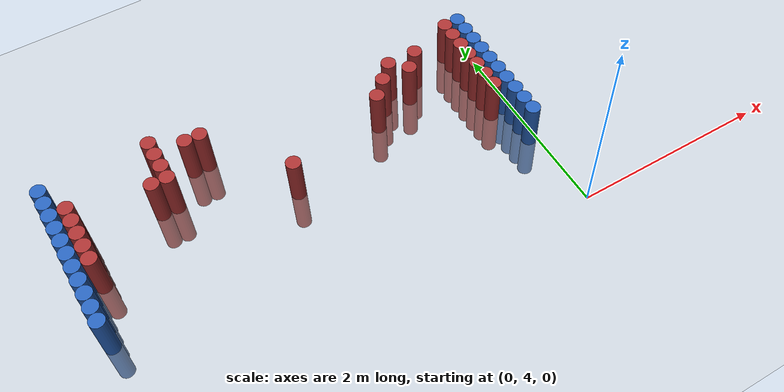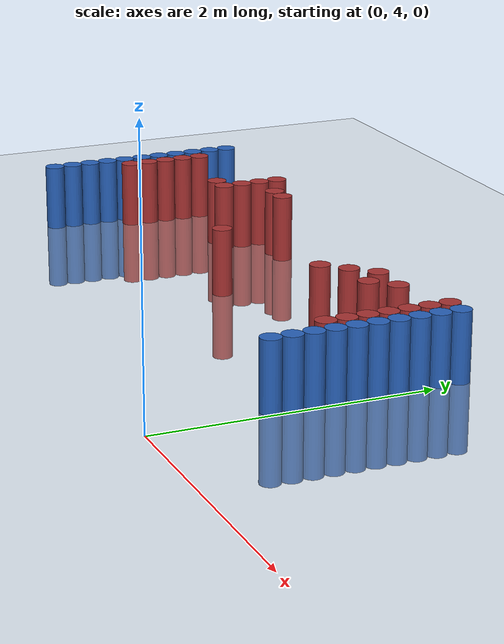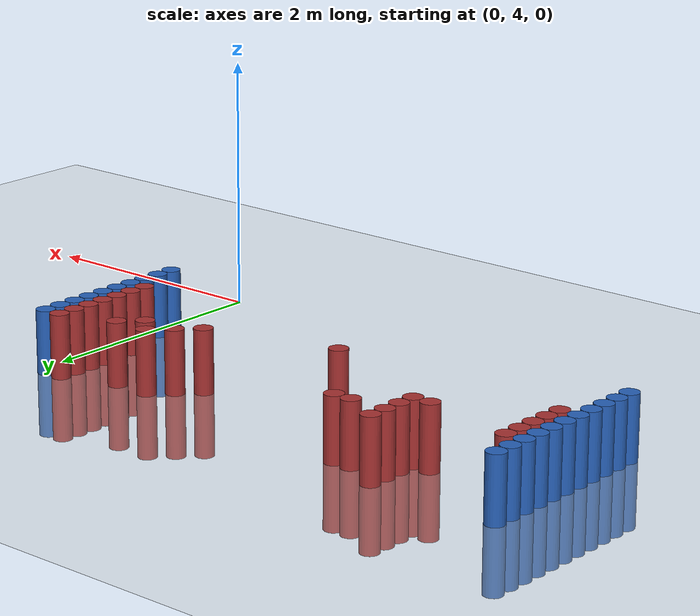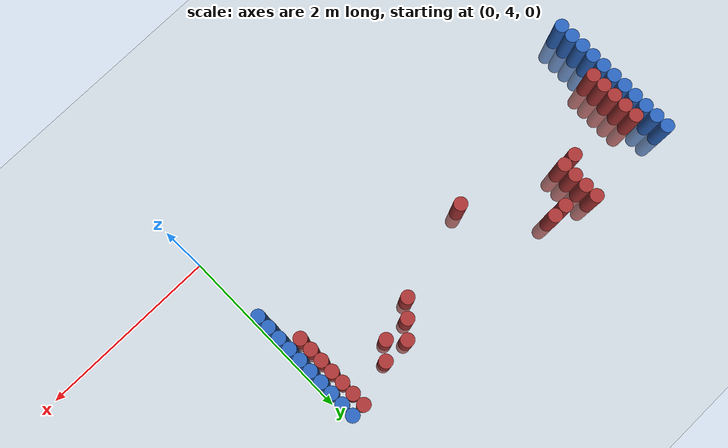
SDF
<sdf version="1.6">
 <world name="default">
  <model name="ground_plane">
   <static>1</static>
   <link name="link">
    <collision name="collision">
     <geometry><plane><normal>0 0 1</normal><size>100 100</size></plane></geometry>
     <surface><friction><ode><mu>100</mu><mu2>50</mu2></ode></friction></surface>
    </collision>
    <visual name="visual">
     <cast_shadows>0</cast_shadows>
     <geometry><plane><normal>0 0 1</normal><size>100 100</size></plane></geometry>
     <material>
      <script><uri>file://media/materials/scripts/gazebo.material</uri><name>Gazebo/Grey</name></script>
     </material>
    </visual>
   </link>
  </model>
  <model name="unit_cylinder_92">
   <static>1</static>
   <pose>-0.075000 4.875000 0.000000 0.000000 0.000000 0.000000</pose>
   <link name="link">
    <inertial>
     <mass>1</mass>
     <inertia><ixx>0.145833</ixx><ixy>0</ixy><ixz>0</ixz><iyy>0.145833</iyy><iyz>0</iyz><izz>0.125</izz></inertia>
    </inertial>
    <collision name="collision">
     <geometry><cylinder><radius>0.075000</radius><length>1</length></cylinder></geometry>
    </collision>
    <visual name="visual">
     <geometry><cylinder><radius>0.075000</radius><length>1</length></cylinder></geometry>
     <material>
      <ambient>0.152000 0.379000 0.720000 1</ambient>
      <diffuse>0.152000 0.379000 0.720000 1</diffuse>
     </material>
     <material>
      <script><name>Gazebo/Grey</name><uri>file://media/materials/scripts/gazebo.material</uri></script>
     </material>
    </visual>
   </link>
  </model>
  <model name="unit_cylinder_93">
   <static>1</static>
   <pose>-4.425000 4.875000 0.000000 0.000000 0.000000 0.000000</pose>
   <link name="link">
    <inertial>
     <mass>1</mass>
     <inertia><ixx>0.145833</ixx><ixy>0</ixy><ixz>0</ixz><iyy>0.145833</iyy><iyz>0</iyz><izz>0.125</izz></inertia>
    </inertial>
    <collision name="collision">
     <geometry><cylinder><radius>0.075000</radius><length>1</length></cylinder></geometry>
    </collision>
    <visual name="visual">
     <geometry><cylinder><radius>0.075000</radius><length>1</length></cylinder></geometry>
     <material>
      <ambient>0.152000 0.379000 0.720000 1</ambient>
      <diffuse>0.152000 0.379000 0.720000 1</diffuse>
     </material>
     <material>
      <script><name>Gazebo/Grey</name><uri>file://media/materials/scripts/gazebo.material</uri></script>
     </material>
    </visual>
   </link>
  </model>
  <model name="unit_cylinder_94">
   <static>1</static>
   <pose>-0.075000 5.025000 0.000000 0.000000 0.000000 0.000000</pose>
   <link name="link">
    <inertial>
     <mass>1</mass>
     <inertia><ixx>0.145833</ixx><ixy>0</ixy><ixz>0</ixz><iyy>0.145833</iyy><iyz>0</iyz><izz>0.125</izz></inertia>
    </inertial>
    <collision name="collision">
     <geometry><cylinder><radius>0.075000</radius><length>1</length></cylinder></geometry>
    </collision>
    <visual name="visual">
     <geometry><cylinder><radius>0.075000</radius><length>1</length></cylinder></geometry>
     <material>
      <ambient>0.152000 0.379000 0.720000 1</ambient>
      <diffuse>0.152000 0.379000 0.720000 1</diffuse>
     </material>
     <material>
      <script><name>Gazebo/Grey</name><uri>file://media/materials/scripts/gazebo.material</uri></script>
     </material>
    </visual>
   </link>
  </model>
  <model name="unit_cylinder_95">
   <static>1</static>
   <pose>-4.425000 5.025000 0.000000 0.000000 0.000000 0.000000</pose>
   <link name="link">
    <inertial>
     <mass>1</mass>
     <inertia><ixx>0.145833</ixx><ixy>0</ixy><ixz>0</ixz><iyy>0.145833</iyy><iyz>0</iyz><izz>0.125</izz></inertia>
    </inertial>
    <collision name="collision">
     <geometry><cylinder><radius>0.075000</radius><length>1</length></cylinder></geometry>
    </collision>
    <visual name="visual">
     <geometry><cylinder><radius>0.075000</radius><length>1</length></cylinder></geometry>
     <material>
      <ambient>0.152000 0.379000 0.720000 1</ambient>
      <diffuse>0.152000 0.379000 0.720000 1</diffuse>
     </material>
     <material>
      <script><name>Gazebo/Grey</name><uri>file://media/materials/scripts/gazebo.material</uri></script>
     </material>
    </visual>
   </link>
  </model>
  <model name="unit_cylinder_96">
   <static>1</static>
   <pose>-4.425000 5.175000 0.000000 0.000000 0.000000 0.000000</pose>
   <link name="link">
    <inertial>
     <mass>1</mass>
     <inertia><ixx>0.145833</ixx><ixy>0</ixy><ixz>0</ixz><iyy>0.145833</iyy><iyz>0</iyz><izz>0.125</izz></inertia>
    </inertial>
    <collision name="collision">
     <geometry><cylinder><radius>0.075000</radius><length>1</length></cylinder></geometry>
    </collision>
    <visual name="visual">
     <geometry><cylinder><radius>0.075000</radius><length>1</length></cylinder></geometry>
     <material>
      <ambient>0.152000 0.379000 0.720000 1</ambient>
      <diffuse>0.152000 0.379000 0.720000 1</diffuse>
     </material>
     <material>
      <script><name>Gazebo/Grey</name><uri>file://media/materials/scripts/gazebo.material</uri></script>
     </material>
    </visual>
   </link>
  </model>
  <model name="unit_cylinder_97">
   <static>1</static>
   <pose>-4.425000 5.325000 0.000000 0.000000 0.000000 0.000000</pose>
   <link name="link">
    <inertial>
     <mass>1</mass>
     <inertia><ixx>0.145833</ixx><ixy>0</ixy><ixz>0</ixz><iyy>0.145833</iyy><iyz>0</iyz><izz>0.125</izz></inertia>
    </inertial>
    <collision name="collision">
     <geometry><cylinder><radius>0.075000</radius><length>1</length></cylinder></geometry>
    </collision>
    <visual name="visual">
     <geometry><cylinder><radius>0.075000</radius><length>1</length></cylinder></geometry>
     <material>
      <ambient>0.152000 0.379000 0.720000 1</ambient>
      <diffuse>0.152000 0.379000 0.720000 1</diffuse>
     </material>
     <material>
      <script><name>Gazebo/Grey</name><uri>file://media/materials/scripts/gazebo.material</uri></script>
     </material>
    </visual>
   </link>
  </model>
  <model name="unit_cylinder_98">
   <static>1</static>
   <pose>-4.425000 5.475000 0.000000 0.000000 0.000000 0.000000</pose>
   <link name="link">
    <inertial>
     <mass>1</mass>
     <inertia><ixx>0.145833</ixx><ixy>0</ixy><ixz>0</ixz><iyy>0.145833</iyy><iyz>0</iyz><izz>0.125</izz></inertia>
    </inertial>
    <collision name="collision">
     <geometry><cylinder><radius>0.075000</radius><length>1</length></cylinder></geometry>
    </collision>
    <visual name="visual">
     <geometry><cylinder><radius>0.075000</radius><length>1</length></cylinder></geometry>
     <material>
      <ambient>0.152000 0.379000 0.720000 1</ambient>
      <diffuse>0.152000 0.379000 0.720000 1</diffuse>
     </material>
     <material>
      <script><name>Gazebo/Grey</name><uri>file://media/materials/scripts/gazebo.material</uri></script>
     </material>
    </visual>
   </link>
  </model>
  <model name="unit_cylinder_99">
   <static>1</static>
   <pose>-4.425000 5.625000 0.000000 0.000000 0.000000 0.000000</pose>
   <link name="link">
    <inertial>
     <mass>1</mass>
     <inertia><ixx>0.145833</ixx><ixy>0</ixy><ixz>0</ixz><iyy>0.145833</iyy><iyz>0</iyz><izz>0.125</izz></inertia>
    </inertial>
    <collision name="collision">
     <geometry><cylinder><radius>0.075000</radius><length>1</length></cylinder></geometry>
    </collision>
    <visual name="visual">
     <geometry><cylinder><radius>0.075000</radius><length>1</length></cylinder></geometry>
     <material>
      <ambient>0.152000 0.379000 0.720000 1</ambient>
      <diffuse>0.152000 0.379000 0.720000 1</diffuse>
     </material>
     <material>
      <script><name>Gazebo/Grey</name><uri>file://media/materials/scripts/gazebo.material</uri></script>
     </material>
    </visual>
   </link>
  </model>
  <model name="unit_cylinder_100">
   <static>1</static>
   <pose>-4.425000 5.775000 0.000000 0.000000 0.000000 0.000000</pose>
   <link name="link">
    <inertial>
     <mass>1</mass>
     <inertia><ixx>0.145833</ixx><ixy>0</ixy><ixz>0</ixz><iyy>0.145833</iyy><iyz>0</iyz><izz>0.125</izz></inertia>
    </inertial>
    <collision name="collision">
     <geometry><cylinder><radius>0.075000</radius><length>1</length></cylinder></geometry>
    </collision>
    <visual name="visual">
     <geometry><cylinder><radius>0.075000</radius><length>1</length></cylinder></geometry>
     <material>
      <ambient>0.152000 0.379000 0.720000 1</ambient>
      <diffuse>0.152000 0.379000 0.720000 1</diffuse>
     </material>
     <material>
      <script><name>Gazebo/Grey</name><uri>file://media/materials/scripts/gazebo.material</uri></script>
     </material>
    </visual>
   </link>
  </model>
  <model name="unit_cylinder_101">
   <static>1</static>
   <pose>-4.425000 5.925000 0.000000 0.000000 0.000000 0.000000</pose>
   <link name="link">
    <inertial>
     <mass>1</mass>
     <inertia><ixx>0.145833</ixx><ixy>0</ixy><ixz>0</ixz><iyy>0.145833</iyy><iyz>0</iyz><izz>0.125</izz></inertia>
    </inertial>
    <collision name="collision">
     <geometry><cylinder><radius>0.075000</radius><length>1</length></cylinder></geometry>
    </collision>
    <visual name="visual">
     <geometry><cylinder><radius>0.075000</radius><length>1</length></cylinder></geometry>
     <material>
      <ambient>0.152000 0.379000 0.720000 1</ambient>
      <diffuse>0.152000 0.379000 0.720000 1</diffuse>
     </material>
     <material>
      <script><name>Gazebo/Grey</name><uri>file://media/materials/scripts/gazebo.material</uri></script>
     </material>
    </visual>
   </link>
  </model>
  <model name="unit_cylinder_102">
   <static>1</static>
   <pose>-4.425000 6.075000 0.000000 0.000000 0.000000 0.000000</pose>
   <link name="link">
    <inertial>
     <mass>1</mass>
     <inertia><ixx>0.145833</ixx><ixy>0</ixy><ixz>0</ixz><iyy>0.145833</iyy><iyz>0</iyz><izz>0.125</izz></inertia>
    </inertial>
    <collision name="collision">
     <geometry><cylinder><radius>0.075000</radius><length>1</length></cylinder></geometry>
    </collision>
    <visual name="visual">
     <geometry><cylinder><radius>0.075000</radius><length>1</length></cylinder></geometry>
     <material>
      <ambient>0.152000 0.379000 0.720000 1</ambient>
      <diffuse>0.152000 0.379000 0.720000 1</diffuse>
     </material>
     <material>
      <script><name>Gazebo/Grey</name><uri>file://media/materials/scripts/gazebo.material</uri></script>
     </material>
    </visual>
   </link>
  </model>
  <model name="unit_cylinder_103">
   <static>1</static>
   <pose>-4.425000 6.225000 0.000000 0.000000 0.000000 0.000000</pose>
   <link name="link">
    <inertial>
     <mass>1</mass>
     <inertia><ixx>0.145833</ixx><ixy>0</ixy><ixz>0</ixz><iyy>0.145833</iyy><iyz>0</iyz><izz>0.125</izz></inertia>
    </inertial>
    <collision name="collision">
     <geometry><cylinder><radius>0.075000</radius><length>1</length></cylinder></geometry>
    </collision>
    <visual name="visual">
     <geometry><cylinder><radius>0.075000</radius><length>1</length></cylinder></geometry>
     <material>
      <ambient>0.152000 0.379000 0.720000 1</ambient>
      <diffuse>0.152000 0.379000 0.720000 1</diffuse>
     </material>
     <material>
      <script><name>Gazebo/Grey</name><uri>file://media/materials/scripts/gazebo.material</uri></script>
     </material>
    </visual>
   </link>
  </model>
  <model name="unit_cylinder_104">
   <static>1</static>
   <pose>-4.425000 6.375000 0.000000 0.000000 0.000000 0.000000</pose>
   <link name="link">
    <inertial>
     <mass>1</mass>
     <inertia><ixx>0.145833</ixx><ixy>0</ixy><ixz>0</ixz><iyy>0.145833</iyy><iyz>0</iyz><izz>0.125</izz></inertia>
    </inertial>
    <collision name="collision">
     <geometry><cylinder><radius>0.075000</radius><length>1</length></cylinder></geometry>
    </collision>
    <visual name="visual">
     <geometry><cylinder><radius>0.075000</radius><length>1</length></cylinder></geometry>
     <material>
      <ambient>0.152000 0.379000 0.720000 1</ambient>
      <diffuse>0.152000 0.379000 0.720000 1</diffuse>
     </material>
     <material>
      <script><name>Gazebo/Grey</name><uri>file://media/materials/scripts/gazebo.material</uri></script>
     </material>
    </visual>
   </link>
  </model>
  <model name="unit_cylinder_126">
   <static>1</static>
   <pose>-4.275000 5.475000 0.000000 0.000000 0.000000 0.000000</pose>
   <link name="link">
    <inertial>
     <mass>1</mass>
     <inertia><ixx>0.145833</ixx><ixy>0</ixy><ixz>0</ixz><iyy>0.145833</iyy><iyz>0</iyz><izz>0.125</izz></inertia>
    </inertial>
    <collision name="collision">
     <geometry><cylinder><radius>0.075000</radius><length>1</length></cylinder></geometry>
    </collision>
    <visual name="visual">
     <geometry><cylinder><radius>0.075000</radius><length>1</length></cylinder></geometry>
     <material>
      <ambient>0.648000 0.192000 0.192000 1</ambient>
      <diffuse>0.648000 0.192000 0.192000 1</diffuse>
     </material>
     <material>
      <script><name>Gazebo/Grey</name><uri>file://media/materials/scripts/gazebo.material</uri></script>
     </material>
    </visual>
   </link>
  </model>
  <model name="unit_cylinder_127">
   <static>1</static>
   <pose>-4.275000 5.625000 0.000000 0.000000 0.000000 0.000000</pose>
   <link name="link">
    <inertial>
     <mass>1</mass>
     <inertia><ixx>0.145833</ixx><ixy>0</ixy><ixz>0</ixz><iyy>0.145833</iyy><iyz>0</iyz><izz>0.125</izz></inertia>
    </inertial>
    <collision name="collision">
     <geometry><cylinder><radius>0.075000</radius><length>1</length></cylinder></geometry>
    </collision>
    <visual name="visual">
     <geometry><cylinder><radius>0.075000</radius><length>1</length></cylinder></geometry>
     <material>
      <ambient>0.648000 0.192000 0.192000 1</ambient>
      <diffuse>0.648000 0.192000 0.192000 1</diffuse>
     </material>
     <material>
      <script><name>Gazebo/Grey</name><uri>file://media/materials/scripts/gazebo.material</uri></script>
     </material>
    </visual>
   </link>
  </model>
  <model name="unit_cylinder_128">
   <static>1</static>
   <pose>-4.275000 5.775000 0.000000 0.000000 0.000000 0.000000</pose>
   <link name="link">
    <inertial>
     <mass>1</mass>
     <inertia><ixx>0.145833</ixx><ixy>0</ixy><ixz>0</ixz><iyy>0.145833</iyy><iyz>0</iyz><izz>0.125</izz></inertia>
    </inertial>
    <collision name="collision">
     <geometry><cylinder><radius>0.075000</radius><length>1</length></cylinder></geometry>
    </collision>
    <visual name="visual">
     <geometry><cylinder><radius>0.075000</radius><length>1</length></cylinder></geometry>
     <material>
      <ambient>0.648000 0.192000 0.192000 1</ambient>
      <diffuse>0.648000 0.192000 0.192000 1</diffuse>
     </material>
     <material>
      <script><name>Gazebo/Grey</name><uri>file://media/materials/scripts/gazebo.material</uri></script>
     </material>
    </visual>
   </link>
  </model>
  <model name="unit_cylinder_129">
   <static>1</static>
   <pose>-4.275000 5.925000 0.000000 0.000000 0.000000 0.000000</pose>
   <link name="link">
    <inertial>
     <mass>1</mass>
     <inertia><ixx>0.145833</ixx><ixy>0</ixy><ixz>0</ixz><iyy>0.145833</iyy><iyz>0</iyz><izz>0.125</izz></inertia>
    </inertial>
    <collision name="collision">
     <geometry><cylinder><radius>0.075000</radius><length>1</length></cylinder></geometry>
    </collision>
    <visual name="visual">
     <geometry><cylinder><radius>0.075000</radius><length>1</length></cylinder></geometry>
     <material>
      <ambient>0.648000 0.192000 0.192000 1</ambient>
      <diffuse>0.648000 0.192000 0.192000 1</diffuse>
     </material>
     <material>
      <script><name>Gazebo/Grey</name><uri>file://media/materials/scripts/gazebo.material</uri></script>
     </material>
    </visual>
   </link>
  </model>
  <model name="unit_cylinder_130">
   <static>1</static>
   <pose>-4.275000 6.075000 0.000000 0.000000 0.000000 0.000000</pose>
   <link name="link">
    <inertial>
     <mass>1</mass>
     <inertia><ixx>0.145833</ixx><ixy>0</ixy><ixz>0</ixz><iyy>0.145833</iyy><iyz>0</iyz><izz>0.125</izz></inertia>
    </inertial>
    <collision name="collision">
     <geometry><cylinder><radius>0.075000</radius><length>1</length></cylinder></geometry>
    </collision>
    <visual name="visual">
     <geometry><cylinder><radius>0.075000</radius><length>1</length></cylinder></geometry>
     <material>
      <ambient>0.648000 0.192000 0.192000 1</ambient>
      <diffuse>0.648000 0.192000 0.192000 1</diffuse>
     </material>
     <material>
      <script><name>Gazebo/Grey</name><uri>file://media/materials/scripts/gazebo.material</uri></script>
     </material>
    </visual>
   </link>
  </model>
  <model name="unit_cylinder_141">
   <static>1</static>
   <pose>-3.525000 5.925000 0.000000 0.000000 0.000000 0.000000</pose>
   <link name="link">
    <inertial>
     <mass>1</mass>
     <inertia><ixx>0.145833</ixx><ixy>0</ixy><ixz>0</ixz><iyy>0.145833</iyy><iyz>0</iyz><izz>0.125</izz></inertia>
    </inertial>
    <collision name="collision">
     <geometry><cylinder><radius>0.075000</radius><length>1</length></cylinder></geometry>
    </collision>
    <visual name="visual">
     <geometry><cylinder><radius>0.075000</radius><length>1</length></cylinder></geometry>
     <material>
      <ambient>0.648000 0.192000 0.192000 1</ambient>
      <diffuse>0.648000 0.192000 0.192000 1</diffuse>
     </material>
     <material>
      <script><name>Gazebo/Grey</name><uri>file://media/materials/scripts/gazebo.material</uri></script>
     </material>
    </visual>
   </link>
  </model>
  <model name="unit_cylinder_144">
   <static>1</static>
   <pose>-3.375000 5.925000 0.000000 0.000000 0.000000 0.000000</pose>
   <link name="link">
    <inertial>
     <mass>1</mass>
     <inertia><ixx>0.145833</ixx><ixy>0</ixy><ixz>0</ixz><iyy>0.145833</iyy><iyz>0</iyz><izz>0.125</izz></inertia>
    </inertial>
    <collision name="collision">
     <geometry><cylinder><radius>0.075000</radius><length>1</length></cylinder></geometry>
    </collision>
    <visual name="visual">
     <geometry><cylinder><radius>0.075000</radius><length>1</length></cylinder></geometry>
     <material>
      <ambient>0.648000 0.192000 0.192000 1</ambient>
      <diffuse>0.648000 0.192000 0.192000 1</diffuse>
     </material>
     <material>
      <script><name>Gazebo/Grey</name><uri>file://media/materials/scripts/gazebo.material</uri></script>
     </material>
    </visual>
   </link>
  </model>
  <model name="unit_cylinder_145">
   <static>1</static>
   <pose>-3.375000 6.075000 0.000000 0.000000 0.000000 0.000000</pose>
   <link name="link">
    <inertial>
     <mass>1</mass>
     <inertia><ixx>0.145833</ixx><ixy>0</ixy><ixz>0</ixz><iyy>0.145833</iyy><iyz>0</iyz><izz>0.125</izz></inertia>
    </inertial>
    <collision name="collision">
     <geometry><cylinder><radius>0.075000</radius><length>1</length></cylinder></geometry>
    </collision>
    <visual name="visual">
     <geometry><cylinder><radius>0.075000</radius><length>1</length></cylinder></geometry>
     <material>
      <ambient>0.648000 0.192000 0.192000 1</ambient>
      <diffuse>0.648000 0.192000 0.192000 1</diffuse>
     </material>
     <material>
      <script><name>Gazebo/Grey</name><uri>file://media/materials/scripts/gazebo.material</uri></script>
     </material>
    </visual>
   </link>
  </model>
  <model name="unit_cylinder_146">
   <static>1</static>
   <pose>-3.375000 6.225000 0.000000 0.000000 0.000000 0.000000</pose>
   <link name="link">
    <inertial>
     <mass>1</mass>
     <inertia><ixx>0.145833</ixx><ixy>0</ixy><ixz>0</ixz><iyy>0.145833</iyy><iyz>0</iyz><izz>0.125</izz></inertia>
    </inertial>
    <collision name="collision">
     <geometry><cylinder><radius>0.075000</radius><length>1</length></cylinder></geometry>
    </collision>
    <visual name="visual">
     <geometry><cylinder><radius>0.075000</radius><length>1</length></cylinder></geometry>
     <material>
      <ambient>0.648000 0.192000 0.192000 1</ambient>
      <diffuse>0.648000 0.192000 0.192000 1</diffuse>
     </material>
     <material>
      <script><name>Gazebo/Grey</name><uri>file://media/materials/scripts/gazebo.material</uri></script>
     </material>
    </visual>
   </link>
  </model>
  <model name="unit_cylinder_147">
   <static>1</static>
   <pose>-3.375000 6.375000 0.000000 0.000000 0.000000 0.000000</pose>
   <link name="link">
    <inertial>
     <mass>1</mass>
     <inertia><ixx>0.145833</ixx><ixy>0</ixy><ixz>0</ixz><iyy>0.145833</iyy><iyz>0</iyz><izz>0.125</izz></inertia>
    </inertial>
    <collision name="collision">
     <geometry><cylinder><radius>0.075000</radius><length>1</length></cylinder></geometry>
    </collision>
    <visual name="visual">
     <geometry><cylinder><radius>0.075000</radius><length>1</length></cylinder></geometry>
     <material>
      <ambient>0.648000 0.192000 0.192000 1</ambient>
      <diffuse>0.648000 0.192000 0.192000 1</diffuse>
     </material>
     <material>
      <script><name>Gazebo/Grey</name><uri>file://media/materials/scripts/gazebo.material</uri></script>
     </material>
    </visual>
   </link>
  </model>
  <model name="unit_cylinder_152">
   <static>1</static>
   <pose>-3.075000 6.225000 0.000000 0.000000 0.000000 0.000000</pose>
   <link name="link">
    <inertial>
     <mass>1</mass>
     <inertia><ixx>0.145833</ixx><ixy>0</ixy><ixz>0</ixz><iyy>0.145833</iyy><iyz>0</iyz><izz>0.125</izz></inertia>
    </inertial>
    <collision name="collision">
     <geometry><cylinder><radius>0.075000</radius><length>1</length></cylinder></geometry>
    </collision>
    <visual name="visual">
     <geometry><cylinder><radius>0.075000</radius><length>1</length></cylinder></geometry>
     <material>
      <ambient>0.648000 0.192000 0.192000 1</ambient>
      <diffuse>0.648000 0.192000 0.192000 1</diffuse>
     </material>
     <material>
      <script><name>Gazebo/Grey</name><uri>file://media/materials/scripts/gazebo.material</uri></script>
     </material>
    </visual>
   </link>
  </model>
  <model name="unit_cylinder_153">
   <static>1</static>
   <pose>-2.925000 6.225000 0.000000 0.000000 0.000000 0.000000</pose>
   <link name="link">
    <inertial>
     <mass>1</mass>
     <inertia><ixx>0.145833</ixx><ixy>0</ixy><ixz>0</ixz><iyy>0.145833</iyy><iyz>0</iyz><izz>0.125</izz></inertia>
    </inertial>
    <collision name="collision">
     <geometry><cylinder><radius>0.075000</radius><length>1</length></cylinder></geometry>
    </collision>
    <visual name="visual">
     <geometry><cylinder><radius>0.075000</radius><length>1</length></cylinder></geometry>
     <material>
      <ambient>0.648000 0.192000 0.192000 1</ambient>
      <diffuse>0.648000 0.192000 0.192000 1</diffuse>
     </material>
     <material>
      <script><name>Gazebo/Grey</name><uri>file://media/materials/scripts/gazebo.material</uri></script>
     </material>
    </visual>
   </link>
  </model>
  <model name="unit_cylinder_157">
   <static>1</static>
   <pose>-2.325000 5.475000 0.000000 0.000000 0.000000 0.000000</pose>
   <link name="link">
    <inertial>
     <mass>1</mass>
     <inertia><ixx>0.145833</ixx><ixy>0</ixy><ixz>0</ixz><iyy>0.145833</iyy><iyz>0</iyz><izz>0.125</izz></inertia>
    </inertial>
    <collision name="collision">
     <geometry><cylinder><radius>0.075000</radius><length>1</length></cylinder></geometry>
    </collision>
    <visual name="visual">
     <geometry><cylinder><radius>0.075000</radius><length>1</length></cylinder></geometry>
     <material>
      <ambient>0.648000 0.192000 0.192000 1</ambient>
      <diffuse>0.648000 0.192000 0.192000 1</diffuse>
     </material>
     <material>
      <script><name>Gazebo/Grey</name><uri>file://media/materials/scripts/gazebo.material</uri></script>
     </material>
    </visual>
   </link>
  </model>
  <model name="unit_cylinder_177">
   <static>1</static>
   <pose>-1.275000 5.775000 0.000000 0.000000 0.000000 0.000000</pose>
   <link name="link">
    <inertial>
     <mass>1</mass>
     <inertia><ixx>0.145833</ixx><ixy>0</ixy><ixz>0</ixz><iyy>0.145833</iyy><iyz>0</iyz><izz>0.125</izz></inertia>
    </inertial>
    <collision name="collision">
     <geometry><cylinder><radius>0.075000</radius><length>1</length></cylinder></geometry>
    </collision>
    <visual name="visual">
     <geometry><cylinder><radius>0.075000</radius><length>1</length></cylinder></geometry>
     <material>
      <ambient>0.648000 0.192000 0.192000 1</ambient>
      <diffuse>0.648000 0.192000 0.192000 1</diffuse>
     </material>
     <material>
      <script><name>Gazebo/Grey</name><uri>file://media/materials/scripts/gazebo.material</uri></script>
     </material>
    </visual>
   </link>
  </model>
  <model name="unit_cylinder_179">
   <static>1</static>
   <pose>-1.125000 5.925000 0.000000 0.000000 0.000000 0.000000</pose>
   <link name="link">
    <inertial>
     <mass>1</mass>
     <inertia><ixx>0.145833</ixx><ixy>0</ixy><ixz>0</ixz><iyy>0.145833</iyy><iyz>0</iyz><izz>0.125</izz></inertia>
    </inertial>
    <collision name="collision">
     <geometry><cylinder><radius>0.075000</radius><length>1</length></cylinder></geometry>
    </collision>
    <visual name="visual">
     <geometry><cylinder><radius>0.075000</radius><length>1</length></cylinder></geometry>
     <material>
      <ambient>0.648000 0.192000 0.192000 1</ambient>
      <diffuse>0.648000 0.192000 0.192000 1</diffuse>
     </material>
     <material>
      <script><name>Gazebo/Grey</name><uri>file://media/materials/scripts/gazebo.material</uri></script>
     </material>
    </visual>
   </link>
  </model>
  <model name="unit_cylinder_183">
   <static>1</static>
   <pose>-0.975000 6.075000 0.000000 0.000000 0.000000 0.000000</pose>
   <link name="link">
    <inertial>
     <mass>1</mass>
     <inertia><ixx>0.145833</ixx><ixy>0</ixy><ixz>0</ixz><iyy>0.145833</iyy><iyz>0</iyz><izz>0.125</izz></inertia>
    </inertial>
    <collision name="collision">
     <geometry><cylinder><radius>0.075000</radius><length>1</length></cylinder></geometry>
    </collision>
    <visual name="visual">
     <geometry><cylinder><radius>0.075000</radius><length>1</length></cylinder></geometry>
     <material>
      <ambient>0.648000 0.192000 0.192000 1</ambient>
      <diffuse>0.648000 0.192000 0.192000 1</diffuse>
     </material>
     <material>
      <script><name>Gazebo/Grey</name><uri>file://media/materials/scripts/gazebo.material</uri></script>
     </material>
    </visual>
   </link>
  </model>
  <model name="unit_cylinder_187">
   <static>1</static>
   <pose>-0.825000 5.925000 0.000000 0.000000 0.000000 0.000000</pose>
   <link name="link">
    <inertial>
     <mass>1</mass>
     <inertia><ixx>0.145833</ixx><ixy>0</ixy><ixz>0</ixz><iyy>0.145833</iyy><iyz>0</iyz><izz>0.125</izz></inertia>
    </inertial>
    <collision name="collision">
     <geometry><cylinder><radius>0.075000</radius><length>1</length></cylinder></geometry>
    </collision>
    <visual name="visual">
     <geometry><cylinder><radius>0.075000</radius><length>1</length></cylinder></geometry>
     <material>
      <ambient>0.648000 0.192000 0.192000 1</ambient>
      <diffuse>0.648000 0.192000 0.192000 1</diffuse>
     </material>
     <material>
      <script><name>Gazebo/Grey</name><uri>file://media/materials/scripts/gazebo.material</uri></script>
     </material>
    </visual>
   </link>
  </model>
  <model name="unit_cylinder_190">
   <static>1</static>
   <pose>-0.675000 6.075000 0.000000 0.000000 0.000000 0.000000</pose>
   <link name="link">
    <inertial>
     <mass>1</mass>
     <inertia><ixx>0.145833</ixx><ixy>0</ixy><ixz>0</ixz><iyy>0.145833</iyy><iyz>0</iyz><izz>0.125</izz></inertia>
    </inertial>
    <collision name="collision">
     <geometry><cylinder><radius>0.075000</radius><length>1</length></cylinder></geometry>
    </collision>
    <visual name="visual">
     <geometry><cylinder><radius>0.075000</radius><length>1</length></cylinder></geometry>
     <material>
      <ambient>0.648000 0.192000 0.192000 1</ambient>
      <diffuse>0.648000 0.192000 0.192000 1</diffuse>
     </material>
     <material>
      <script><name>Gazebo/Grey</name><uri>file://media/materials/scripts/gazebo.material</uri></script>
     </material>
    </visual>
   </link>
  </model>
  <model name="unit_cylinder_191">
   <static>1</static>
   <pose>-0.225000 5.325000 0.000000 0.000000 0.000000 0.000000</pose>
   <link name="link">
    <inertial>
     <mass>1</mass>
     <inertia><ixx>0.145833</ixx><ixy>0</ixy><ixz>0</ixz><iyy>0.145833</iyy><iyz>0</iyz><izz>0.125</izz></inertia>
    </inertial>
    <collision name="collision">
     <geometry><cylinder><radius>0.075000</radius><length>1</length></cylinder></geometry>
    </collision>
    <visual name="visual">
     <geometry><cylinder><radius>0.075000</radius><length>1</length></cylinder></geometry>
     <material>
      <ambient>0.648000 0.192000 0.192000 1</ambient>
      <diffuse>0.648000 0.192000 0.192000 1</diffuse>
     </material>
     <material>
      <script><name>Gazebo/Grey</name><uri>file://media/materials/scripts/gazebo.material</uri></script>
     </material>
    </visual>
   </link>
  </model>
  <model name="unit_cylinder_192">
   <static>1</static>
   <pose>-0.225000 5.475000 0.000000 0.000000 0.000000 0.000000</pose>
   <link name="link">
    <inertial>
     <mass>1</mass>
     <inertia><ixx>0.145833</ixx><ixy>0</ixy><ixz>0</ixz><iyy>0.145833</iyy><iyz>0</iyz><izz>0.125</izz></inertia>
    </inertial>
    <collision name="collision">
     <geometry><cylinder><radius>0.075000</radius><length>1</length></cylinder></geometry>
    </collision>
    <visual name="visual">
     <geometry><cylinder><radius>0.075000</radius><length>1</length></cylinder></geometry>
     <material>
      <ambient>0.648000 0.192000 0.192000 1</ambient>
      <diffuse>0.648000 0.192000 0.192000 1</diffuse>
     </material>
     <material>
      <script><name>Gazebo/Grey</name><uri>file://media/materials/scripts/gazebo.material</uri></script>
     </material>
    </visual>
   </link>
  </model>
  <model name="unit_cylinder_193">
   <static>1</static>
   <pose>-0.225000 5.625000 0.000000 0.000000 0.000000 0.000000</pose>
   <link name="link">
    <inertial>
     <mass>1</mass>
     <inertia><ixx>0.145833</ixx><ixy>0</ixy><ixz>0</ixz><iyy>0.145833</iyy><iyz>0</iyz><izz>0.125</izz></inertia>
    </inertial>
    <collision name="collision">
     <geometry><cylinder><radius>0.075000</radius><length>1</length></cylinder></geometry>
    </collision>
    <visual name="visual">
     <geometry><cylinder><radius>0.075000</radius><length>1</length></cylinder></geometry>
     <material>
      <ambient>0.648000 0.192000 0.192000 1</ambient>
      <diffuse>0.648000 0.192000 0.192000 1</diffuse>
     </material>
     <material>
      <script><name>Gazebo/Grey</name><uri>file://media/materials/scripts/gazebo.material</uri></script>
     </material>
    </visual>
   </link>
  </model>
  <model name="unit_cylinder_194">
   <static>1</static>
   <pose>-0.225000 5.775000 0.000000 0.000000 0.000000 0.000000</pose>
   <link name="link">
    <inertial>
     <mass>1</mass>
     <inertia><ixx>0.145833</ixx><ixy>0</ixy><ixz>0</ixz><iyy>0.145833</iyy><iyz>0</iyz><izz>0.125</izz></inertia>
    </inertial>
    <collision name="collision">
     <geometry><cylinder><radius>0.075000</radius><length>1</length></cylinder></geometry>
    </collision>
    <visual name="visual">
     <geometry><cylinder><radius>0.075000</radius><length>1</length></cylinder></geometry>
     <material>
      <ambient>0.648000 0.192000 0.192000 1</ambient>
      <diffuse>0.648000 0.192000 0.192000 1</diffuse>
     </material>
     <material>
      <script><name>Gazebo/Grey</name><uri>file://media/materials/scripts/gazebo.material</uri></script>
     </material>
    </visual>
   </link>
  </model>
  <model name="unit_cylinder_195">
   <static>1</static>
   <pose>-0.225000 5.925000 0.000000 0.000000 0.000000 0.000000</pose>
   <link name="link">
    <inertial>
     <mass>1</mass>
     <inertia><ixx>0.145833</ixx><ixy>0</ixy><ixz>0</ixz><iyy>0.145833</iyy><iyz>0</iyz><izz>0.125</izz></inertia>
    </inertial>
    <collision name="collision">
     <geometry><cylinder><radius>0.075000</radius><length>1</length></cylinder></geometry>
    </collision>
    <visual name="visual">
     <geometry><cylinder><radius>0.075000</radius><length>1</length></cylinder></geometry>
     <material>
      <ambient>0.648000 0.192000 0.192000 1</ambient>
      <diffuse>0.648000 0.192000 0.192000 1</diffuse>
     </material>
     <material>
      <script><name>Gazebo/Grey</name><uri>file://media/materials/scripts/gazebo.material</uri></script>
     </material>
    </visual>
   </link>
  </model>
  <model name="unit_cylinder_196">
   <static>1</static>
   <pose>-0.225000 6.075000 0.000000 0.000000 0.000000 0.000000</pose>
   <link name="link">
    <inertial>
     <mass>1</mass>
     <inertia><ixx>0.145833</ixx><ixy>0</ixy><ixz>0</ixz><iyy>0.145833</iyy><iyz>0</iyz><izz>0.125</izz></inertia>
    </inertial>
    <collision name="collision">
     <geometry><cylinder><radius>0.075000</radius><length>1</length></cylinder></geometry>
    </collision>
    <visual name="visual">
     <geometry><cylinder><radius>0.075000</radius><length>1</length></cylinder></geometry>
     <material>
      <ambient>0.648000 0.192000 0.192000 1</ambient>
      <diffuse>0.648000 0.192000 0.192000 1</diffuse>
     </material>
     <material>
      <script><name>Gazebo/Grey</name><uri>file://media/materials/scripts/gazebo.material</uri></script>
     </material>
    </visual>
   </link>
  </model>
  <model name="unit_cylinder_197">
   <static>1</static>
   <pose>-0.225000 6.225000 0.000000 0.000000 0.000000 0.000000</pose>
   <link name="link">
    <inertial>
     <mass>1</mass>
     <inertia><ixx>0.145833</ixx><ixy>0</ixy><ixz>0</ixz><iyy>0.145833</iyy><iyz>0</iyz><izz>0.125</izz></inertia>
    </inertial>
    <collision name="collision">
     <geometry><cylinder><radius>0.075000</radius><length>1</length></cylinder></geometry>
    </collision>
    <visual name="visual">
     <geometry><cylinder><radius>0.075000</radius><length>1</length></cylinder></geometry>
     <material>
      <ambient>0.648000 0.192000 0.192000 1</ambient>
      <diffuse>0.648000 0.192000 0.192000 1</diffuse>
     </material>
     <material>
      <script><name>Gazebo/Grey</name><uri>file://media/materials/scripts/gazebo.material</uri></script>
     </material>
    </visual>
   </link>
  </model>
  <model name="unit_cylinder_200">
   <static>1</static>
   <pose>-0.075000 5.175000 0.000000 0.000000 0.000000 0.000000</pose>
   <link name="link">
    <inertial>
     <mass>1</mass>
     <inertia><ixx>0.145833</ixx><ixy>0</ixy><ixz>0</ixz><iyy>0.145833</iyy><iyz>0</iyz><izz>0.125</izz></inertia>
    </inertial>
    <collision name="collision">
     <geometry><cylinder><radius>0.075000</radius><length>1</length></cylinder></geometry>
    </collision>
    <visual name="visual">
     <geometry><cylinder><radius>0.075000</radius><length>1</length></cylinder></geometry>
     <material>
      <ambient>0.152000 0.379000 0.720000 1</ambient>
      <diffuse>0.152000 0.379000 0.720000 1</diffuse>
     </material>
     <material>
      <script><name>Gazebo/Grey</name><uri>file://media/materials/scripts/gazebo.material</uri></script>
     </material>
    </visual>
   </link>
  </model>
  <model name="unit_cylinder_201">
   <static>1</static>
   <pose>-0.075000 5.325000 0.000000 0.000000 0.000000 0.000000</pose>
   <link name="link">
    <inertial>
     <mass>1</mass>
     <inertia><ixx>0.145833</ixx><ixy>0</ixy><ixz>0</ixz><iyy>0.145833</iyy><iyz>0</iyz><izz>0.125</izz></inertia>
    </inertial>
    <collision name="collision">
     <geometry><cylinder><radius>0.075000</radius><length>1</length></cylinder></geometry>
    </collision>
    <visual name="visual">
     <geometry><cylinder><radius>0.075000</radius><length>1</length></cylinder></geometry>
     <material>
      <ambient>0.152000 0.379000 0.720000 1</ambient>
      <diffuse>0.152000 0.379000 0.720000 1</diffuse>
     </material>
     <material>
      <script><name>Gazebo/Grey</name><uri>file://media/materials/scripts/gazebo.material</uri></script>
     </material>
    </visual>
   </link>
  </model>
  <model name="unit_cylinder_202">
   <static>1</static>
   <pose>-0.075000 5.475000 0.000000 0.000000 0.000000 0.000000</pose>
   <link name="link">
    <inertial>
     <mass>1</mass>
     <inertia><ixx>0.145833</ixx><ixy>0</ixy><ixz>0</ixz><iyy>0.145833</iyy><iyz>0</iyz><izz>0.125</izz></inertia>
    </inertial>
    <collision name="collision">
     <geometry><cylinder><radius>0.075000</radius><length>1</length></cylinder></geometry>
    </collision>
    <visual name="visual">
     <geometry><cylinder><radius>0.075000</radius><length>1</length></cylinder></geometry>
     <material>
      <ambient>0.152000 0.379000 0.720000 1</ambient>
      <diffuse>0.152000 0.379000 0.720000 1</diffuse>
     </material>
     <material>
      <script><name>Gazebo/Grey</name><uri>file://media/materials/scripts/gazebo.material</uri></script>
     </material>
    </visual>
   </link>
  </model>
  <model name="unit_cylinder_203">
   <static>1</static>
   <pose>-0.075000 5.625000 0.000000 0.000000 0.000000 0.000000</pose>
   <link name="link">
    <inertial>
     <mass>1</mass>
     <inertia><ixx>0.145833</ixx><ixy>0</ixy><ixz>0</ixz><iyy>0.145833</iyy><iyz>0</iyz><izz>0.125</izz></inertia>
    </inertial>
    <collision name="collision">
     <geometry><cylinder><radius>0.075000</radius><length>1</length></cylinder></geometry>
    </collision>
    <visual name="visual">
     <geometry><cylinder><radius>0.075000</radius><length>1</length></cylinder></geometry>
     <material>
      <ambient>0.152000 0.379000 0.720000 1</ambient>
      <diffuse>0.152000 0.379000 0.720000 1</diffuse>
     </material>
     <material>
      <script><name>Gazebo/Grey</name><uri>file://media/materials/scripts/gazebo.material</uri></script>
     </material>
    </visual>
   </link>
  </model>
  <model name="unit_cylinder_204">
   <static>1</static>
   <pose>-0.075000 5.775000 0.000000 0.000000 0.000000 0.000000</pose>
   <link name="link">
    <inertial>
     <mass>1</mass>
     <inertia><ixx>0.145833</ixx><ixy>0</ixy><ixz>0</ixz><iyy>0.145833</iyy><iyz>0</iyz><izz>0.125</izz></inertia>
    </inertial>
    <collision name="collision">
     <geometry><cylinder><radius>0.075000</radius><length>1</length></cylinder></geometry>
    </collision>
    <visual name="visual">
     <geometry><cylinder><radius>0.075000</radius><length>1</length></cylinder></geometry>
     <material>
      <ambient>0.152000 0.379000 0.720000 1</ambient>
      <diffuse>0.152000 0.379000 0.720000 1</diffuse>
     </material>
     <material>
      <script><name>Gazebo/Grey</name><uri>file://media/materials/scripts/gazebo.material</uri></script>
     </material>
    </visual>
   </link>
  </model>
  <model name="unit_cylinder_205">
   <static>1</static>
   <pose>-0.075000 5.925000 0.000000 0.000000 0.000000 0.000000</pose>
   <link name="link">
    <inertial>
     <mass>1</mass>
     <inertia><ixx>0.145833</ixx><ixy>0</ixy><ixz>0</ixz><iyy>0.145833</iyy><iyz>0</iyz><izz>0.125</izz></inertia>
    </inertial>
    <collision name="collision">
     <geometry><cylinder><radius>0.075000</radius><length>1</length></cylinder></geometry>
    </collision>
    <visual name="visual">
     <geometry><cylinder><radius>0.075000</radius><length>1</length></cylinder></geometry>
     <material>
      <ambient>0.152000 0.379000 0.720000 1</ambient>
      <diffuse>0.152000 0.379000 0.720000 1</diffuse>
     </material>
     <material>
      <script><name>Gazebo/Grey</name><uri>file://media/materials/scripts/gazebo.material</uri></script>
     </material>
    </visual>
   </link>
  </model>
  <model name="unit_cylinder_206">
   <static>1</static>
   <pose>-0.075000 6.075000 0.000000 0.000000 0.000000 0.000000</pose>
   <link name="link">
    <inertial>
     <mass>1</mass>
     <inertia><ixx>0.145833</ixx><ixy>0</ixy><ixz>0</ixz><iyy>0.145833</iyy><iyz>0</iyz><izz>0.125</izz></inertia>
    </inertial>
    <collision name="collision">
     <geometry><cylinder><radius>0.075000</radius><length>1</length></cylinder></geometry>
    </collision>
    <visual name="visual">
     <geometry><cylinder><radius>0.075000</radius><length>1</length></cylinder></geometry>
     <material>
      <ambient>0.152000 0.379000 0.720000 1</ambient>
      <diffuse>0.152000 0.379000 0.720000 1</diffuse>
     </material>
     <material>
      <script><name>Gazebo/Grey</name><uri>file://media/materials/scripts/gazebo.material</uri></script>
     </material>
    </visual>
   </link>
  </model>
  <model name="unit_cylinder_207">
   <static>1</static>
   <pose>-0.075000 6.225000 0.000000 0.000000 0.000000 0.000000</pose>
   <link name="link">
    <inertial>
     <mass>1</mass>
     <inertia><ixx>0.145833</ixx><ixy>0</ixy><ixz>0</ixz><iyy>0.145833</iyy><iyz>0</iyz><izz>0.125</izz></inertia>
    </inertial>
    <collision name="collision">
     <geometry><cylinder><radius>0.075000</radius><length>1</length></cylinder></geometry>
    </collision>
    <visual name="visual">
     <geometry><cylinder><radius>0.075000</radius><length>1</length></cylinder></geometry>
     <material>
      <ambient>0.152000 0.379000 0.720000 1</ambient>
      <diffuse>0.152000 0.379000 0.720000 1</diffuse>
     </material>
     <material>
      <script><name>Gazebo/Grey</name><uri>file://media/materials/scripts/gazebo.material</uri></script>
     </material>
    </visual>
   </link>
  </model>
 </world>
</sdf>
